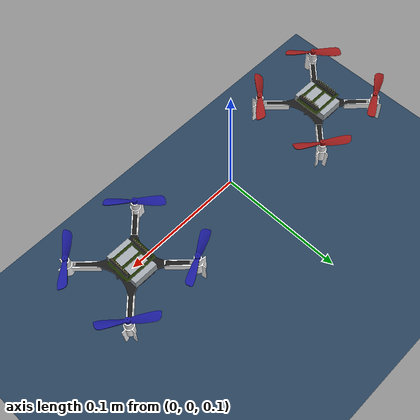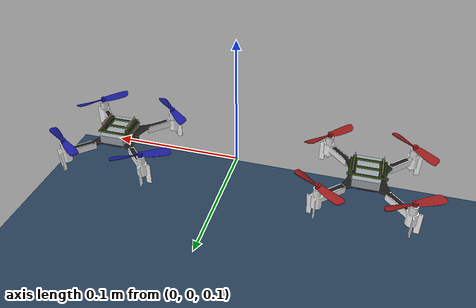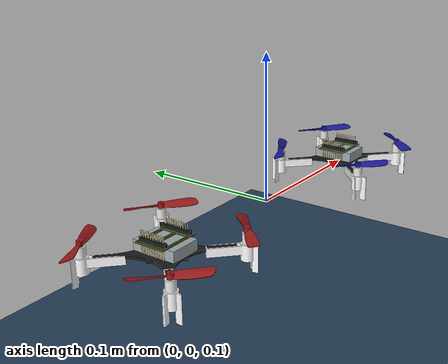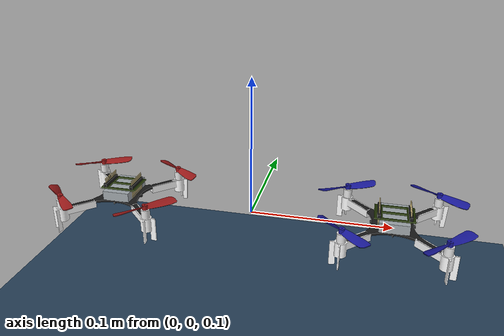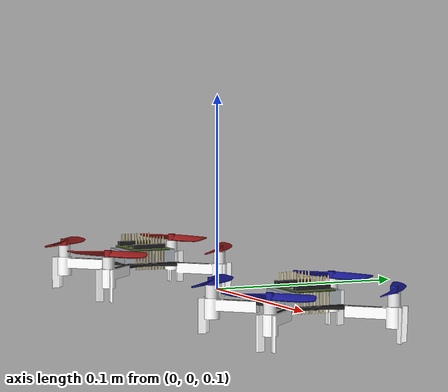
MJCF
<mujoco model="CF2 scene">
  <option integrator="RK4" density="1.225" viscosity="1.8e-5"/>

  <include file="cf2_multi_1.xml"/>
  <include file="cf2_multi_2.xml"/>

  <!-- Two drones, 14 / 8 for qpos / control -->
  <keyframe>
    <key name="hover" qpos="0 0 0.1 1 0 0 0 0 0 0.1 1 0 0 0" ctrl="0.26487 0 0 0 0.26487 0 0 0"/>
  </keyframe>

  <statistic center="0 0 0.1" extent="0.2" meansize=".05"/>

  <visual>
    <headlight diffuse="0.6 0.6 0.6" ambient="0.3 0.3 0.3" specular="0 0 0"/>
    <rgba haze="0.15 0.25 0.35 1"/>
    <global azimuth="-20" elevation="-20" ellipsoidinertia="true"/>
  </visual>

  <asset>
    <texture type="skybox" builtin="gradient" rgb1="0.3 0.5 0.7" rgb2="0 0 0" width="512" height="3072"/>
    <texture type="2d" name="groundplane" builtin="checker" mark="edge" rgb1="0.2 0.3 0.4" rgb2="0.1 0.2 0.3"
      markrgb="0.8 0.8 0.8" width="300" height="300"/>
    <material name="groundplane" texture="groundplane" texuniform="true" texrepeat="5 5" reflectance="0.2"/>
  </asset>

  <worldbody>
    <camera name="track" pos="-1 0 .5" xyaxes="0 -1 0 1 0 2" mode="trackcom"/>
    <light pos="0 0 1.5" dir="0 0 -1" directional="true"/>
    <geom name="floor" size="0 0 0.05" type="plane" material="groundplane"/>
  </worldbody>
</mujoco>

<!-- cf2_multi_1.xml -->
<mujoco model="cf2">
  <compiler inertiafromgeom="false" meshdir="assets" autolimits="true"/>

  <default>
    <default class="cf2">
      <default class="visual">
        <geom group="2" type="mesh" contype="0" conaffinity="0"/>
      </default>
      <default class="collision">
        <geom group="3" type="mesh"/>
      </default>
      <site group="5"/>
    </default>
  </default>

  <asset>
    <material name="polished_plastic" rgba="0.631 0.659 0.678 1"/>
    <material name="polished_gold" rgba="0.969 0.878 0.6 1"/>
    <material name="medium_gloss_plastic" rgba="0.109 0.184 0.0 1"/>
    <material name="propeller_plastic" rgba="0.792 0.820 0.933 1"/>
    <material name="white" rgba="1 1 1 1"/>
    <material name="body_frame_plastic" rgba="0.102 0.102 0.102 1"/>
    <material name="burnished_chrome" rgba="0.898 0.898 0.898 1"/>

    <mesh file="cf2_0.obj"/>
    <mesh file="cf2_1.obj"/>
    <mesh file="cf2_2.obj"/>
    <mesh file="cf2_3.obj"/>
    <mesh file="cf2_4.obj"/>
    <mesh file="cf2_5.obj"/>
    <mesh file="cf2_6.obj"/>
    <mesh file="cf2_collision_0.obj"/>
    <mesh file="cf2_collision_1.obj"/>
    <mesh file="cf2_collision_2.obj"/>
    <mesh file="cf2_collision_3.obj"/>
    <mesh file="cf2_collision_4.obj"/>
    <mesh file="cf2_collision_5.obj"/>
    <mesh file="cf2_collision_6.obj"/>
    <mesh file="cf2_collision_7.obj"/>
    <mesh file="cf2_collision_8.obj"/>
    <mesh file="cf2_collision_9.obj"/>
    <mesh file="cf2_collision_10.obj"/>
    <mesh file="cf2_collision_11.obj"/>
    <mesh file="cf2_collision_12.obj"/>
    <mesh file="cf2_collision_13.obj"/>
    <mesh file="cf2_collision_14.obj"/>
    <mesh file="cf2_collision_15.obj"/>
    <mesh file="cf2_collision_16.obj"/>
    <mesh file="cf2_collision_17.obj"/>
    <mesh file="cf2_collision_18.obj"/>
    <mesh file="cf2_collision_19.obj"/>
    <mesh file="cf2_collision_20.obj"/>
    <mesh file="cf2_collision_21.obj"/>
    <mesh file="cf2_collision_22.obj"/>
    <mesh file="cf2_collision_23.obj"/>
    <mesh file="cf2_collision_24.obj"/>
    <mesh file="cf2_collision_25.obj"/>
    <mesh file="cf2_collision_26.obj"/>
    <mesh file="cf2_collision_27.obj"/>
    <mesh file="cf2_collision_28.obj"/>
    <mesh file="cf2_collision_29.obj"/>
    <mesh file="cf2_collision_30.obj"/>
    <mesh file="cf2_collision_31.obj"/>
  </asset>

  <worldbody>
    <!-- Slide x offset to allow space for other drone -->
    <body name="cf2" pos="-0.1 0 0.1" childclass="cf2">
      <freejoint/>
      <inertial pos="0 0 0" mass="0.027" diaginertia="2.3951e-5 2.3951e-5 3.2347e-5"/>
      <!-- Drone 1: red propellors -->
      <geom mesh="cf2_0_drone_2" rgba="0.6 0.1 0.1 1" class="visual"/>
      <geom mesh="cf2_1" material="medium_gloss_plastic" class="visual"/>
      <geom mesh="cf2_2" material="polished_gold" class="visual"/>
      <geom mesh="cf2_3" material="polished_plastic" class="visual"/>
      <geom mesh="cf2_4" material="burnished_chrome" class="visual"/>
      <geom mesh="cf2_5" material="body_frame_plastic" class="visual"/>
      <geom mesh="cf2_6" material="white" class="visual"/>
      <geom mesh="cf2_collision_0" class="collision"/>
      <geom mesh="cf2_collision_1" class="collision"/>
      <geom mesh="cf2_collision_2" class="collision"/>
      <geom mesh="cf2_collision_3" class="collision"/>
      <geom mesh="cf2_collision_4" class="collision"/>
      <geom mesh="cf2_collision_5" class="collision"/>
      <geom mesh="cf2_collision_6" class="collision"/>
      <geom mesh="cf2_collision_7" class="collision"/>
      <geom mesh="cf2_collision_8" class="collision"/>
      <geom mesh="cf2_collision_9" class="collision"/>
      <geom mesh="cf2_collision_10" class="collision"/>
      <geom mesh="cf2_collision_11" class="collision"/>
      <geom mesh="cf2_collision_12" class="collision"/>
      <geom mesh="cf2_collision_13" class="collision"/>
      <geom mesh="cf2_collision_14" class="collision"/>
      <geom mesh="cf2_collision_15" class="collision"/>
      <geom mesh="cf2_collision_16" class="collision"/>
      <geom mesh="cf2_collision_17" class="collision"/>
      <geom mesh="cf2_collision_18" class="collision"/>
      <geom mesh="cf2_collision_19" class="collision"/>
      <geom mesh="cf2_collision_20" class="collision"/>
      <geom mesh="cf2_collision_21" class="collision"/>
      <geom mesh="cf2_collision_22" class="collision"/>
      <geom mesh="cf2_collision_23" class="collision"/>
      <geom mesh="cf2_collision_24" class="collision"/>
      <geom mesh="cf2_collision_25" class="collision"/>
      <geom mesh="cf2_collision_26" class="collision"/>
      <geom mesh="cf2_collision_27" class="collision"/>
      <geom mesh="cf2_collision_28" class="collision"/>
      <geom mesh="cf2_collision_29" class="collision"/>
      <geom mesh="cf2_collision_30" class="collision"/>
      <geom mesh="cf2_collision_31" class="collision"/>
      <site name="imu"/>
      <site name="actuation"/>
    </body>
  </worldbody>

  <actuator>
    <motor class="cf2" ctrlrange="0 0.35" gear="0 0 1 0 0 0" site="actuation" name="body_thrust"/>
    <motor class="cf2" ctrlrange="-1 1" gear="0 0 0 -0.00001 0 0" site="actuation" name="x_moment"/>
    <motor class="cf2" ctrlrange="-1 1" gear="0 0 0 0 -0.00001 0" site="actuation" name="y_moment"/>
    <motor class="cf2" ctrlrange="-1 1" gear="0 0 0 0 0 -0.00001" site="actuation" name="z_moment"/>
  </actuator>

  <sensor>
    <gyro name="body_gyro" site="imu"/>
    <accelerometer name="body_linacc" site="imu"/>
    <framequat name="body_quat" objtype="site" objname="imu"/>
  </sensor>
</mujoco>

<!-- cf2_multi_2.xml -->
<mujoco model="cf2">
  <compiler inertiafromgeom="false" meshdir="assets" autolimits="true"/>

  <default>
    <default class="cf2_drone_2">
      <default class="visual_drone_2">
        <geom group="2" type="mesh" contype="0" conaffinity="0"/>
      </default>
      <default class="collision_drone_2">
        <geom group="3" type="mesh"/>
      </default>
      <site group="5"/>
    </default>
  </default>

  <asset>
    <material name="polished_plastic_drone_2" rgba="0.631 0.659 0.678 1"/>
    <material name="polished_gold_drone_2" rgba="0.969 0.878 0.6 1"/>
    <material name="medium_gloss_plastic_drone_2" rgba="0.109 0.184 0.0 1"/>
    <material name="propeller_plastic_drone_2" rgba="0.792 0.820 0.933 1"/>
    <material name="white_drone_2" rgba="1 1 1 1"/>
    <material name="body_frame_plastic_drone_2" rgba="0.102 0.102 0.102 1"/>
    <material name="burnished_chrome_drone_2" rgba="0.898 0.898 0.898 1"/>

    <mesh name="cf2_0_drone_2" file="cf2_0.obj"/>
    <mesh name="cf2_1_drone_2" file="cf2_1.obj"/>
    <mesh name="cf2_2_drone_2" file="cf2_2.obj"/>
    <mesh name="cf2_3_drone_2" file="cf2_3.obj"/>
    <mesh name="cf2_4_drone_2" file="cf2_4.obj"/>
    <mesh name="cf2_5_drone_2" file="cf2_5.obj"/>
    <mesh name="cf2_6_drone_2" file="cf2_6.obj"/>
    <mesh name="cf2_collision_0_drone_2" file="cf2_collision_0.obj"/>
    <mesh name="cf2_collision_1_drone_2" file="cf2_collision_1.obj"/>
    <mesh name="cf2_collision_2_drone_2" file="cf2_collision_2.obj"/>
    <mesh name="cf2_collision_3_drone_2" file="cf2_collision_3.obj"/>
    <mesh name="cf2_collision_4_drone_2" file="cf2_collision_4.obj"/>
    <mesh name="cf2_collision_5_drone_2" file="cf2_collision_5.obj"/>
    <mesh name="cf2_collision_6_drone_2" file="cf2_collision_6.obj"/>
    <mesh name="cf2_collision_7_drone_2" file="cf2_collision_7.obj"/>
    <mesh name="cf2_collision_8_drone_2" file="cf2_collision_8.obj"/>
    <mesh name="cf2_collision_9_drone_2" file="cf2_collision_9.obj"/>
    <mesh name="cf2_collision_10_drone_2" file="cf2_collision_10.obj"/>
    <mesh name="cf2_collision_11_drone_2" file="cf2_collision_11.obj"/>
    <mesh name="cf2_collision_12_drone_2" file="cf2_collision_12.obj"/>
    <mesh name="cf2_collision_13_drone_2" file="cf2_collision_13.obj"/>
    <mesh name="cf2_collision_14_drone_2" file="cf2_collision_14.obj"/>
    <mesh name="cf2_collision_15_drone_2" file="cf2_collision_15.obj"/>
    <mesh name="cf2_collision_16_drone_2" file="cf2_collision_16.obj"/>
    <mesh name="cf2_collision_17_drone_2" file="cf2_collision_17.obj"/>
    <mesh name="cf2_collision_18_drone_2" file="cf2_collision_18.obj"/>
    <mesh name="cf2_collision_19_drone_2" file="cf2_collision_19.obj"/>
    <mesh name="cf2_collision_20_drone_2" file="cf2_collision_20.obj"/>
    <mesh name="cf2_collision_21_drone_2" file="cf2_collision_21.obj"/>
    <mesh name="cf2_collision_22_drone_2" file="cf2_collision_22.obj"/>
    <mesh name="cf2_collision_23_drone_2" file="cf2_collision_23.obj"/>
    <mesh name="cf2_collision_24_drone_2" file="cf2_collision_24.obj"/>
    <mesh name="cf2_collision_25_drone_2" file="cf2_collision_25.obj"/>
    <mesh name="cf2_collision_26_drone_2" file="cf2_collision_26.obj"/>
    <mesh name="cf2_collision_27_drone_2" file="cf2_collision_27.obj"/>
    <mesh name="cf2_collision_28_drone_2" file="cf2_collision_28.obj"/>
    <mesh name="cf2_collision_29_drone_2" file="cf2_collision_29.obj"/>
    <mesh name="cf2_collision_30_drone_2" file="cf2_collision_30.obj"/>
    <mesh name="cf2_collision_31_drone_2" file="cf2_collision_31.obj"/>
  </asset>

  <worldbody>
    <!-- Slide x offset to allow space for other drone -->
    <body name="cf2_drone_2" pos="0.1 0 0.1" childclass="cf2_drone_2">
      <freejoint/>
      <inertial pos="0 0 0" mass="0.027" diaginertia="2.3951e-5 2.3951e-5 3.2347e-5"/>
      <!-- Drone 2: blue propellors -->
      <geom mesh="cf2_0_drone_2" rgba="0.1 0.1 0.6 1" class="visual"/>
      <geom mesh="cf2_1_drone_2" material="medium_gloss_plastic" class="visual"/>
      <geom mesh="cf2_2_drone_2" material="polished_gold" class="visual"/>
      <geom mesh="cf2_3_drone_2" material="polished_plastic" class="visual"/>
      <geom mesh="cf2_4_drone_2" material="burnished_chrome" class="visual"/>
      <geom mesh="cf2_5_drone_2" material="body_frame_plastic" class="visual"/>
      <geom mesh="cf2_6_drone_2" material="white" class="visual"/>
      <geom mesh="cf2_collision_0_drone_2" class="collision"/>
      <geom mesh="cf2_collision_1_drone_2" class="collision"/>
      <geom mesh="cf2_collision_2_drone_2" class="collision"/>
      <geom mesh="cf2_collision_3_drone_2" class="collision"/>
      <geom mesh="cf2_collision_4_drone_2" class="collision"/>
      <geom mesh="cf2_collision_5_drone_2" class="collision"/>
      <geom mesh="cf2_collision_6_drone_2" class="collision"/>
      <geom mesh="cf2_collision_7_drone_2" class="collision"/>
      <geom mesh="cf2_collision_8_drone_2" class="collision"/>
      <geom mesh="cf2_collision_9_drone_2" class="collision"/>
      <geom mesh="cf2_collision_10_drone_2" class="collision"/>
      <geom mesh="cf2_collision_11_drone_2" class="collision"/>
      <geom mesh="cf2_collision_12_drone_2" class="collision"/>
      <geom mesh="cf2_collision_13_drone_2" class="collision"/>
      <geom mesh="cf2_collision_14_drone_2" class="collision"/>
      <geom mesh="cf2_collision_15_drone_2" class="collision"/>
      <geom mesh="cf2_collision_16_drone_2" class="collision"/>
      <geom mesh="cf2_collision_17_drone_2" class="collision"/>
      <geom mesh="cf2_collision_18_drone_2" class="collision"/>
      <geom mesh="cf2_collision_19_drone_2" class="collision"/>
      <geom mesh="cf2_collision_20_drone_2" class="collision"/>
      <geom mesh="cf2_collision_21_drone_2" class="collision"/>
      <geom mesh="cf2_collision_22_drone_2" class="collision"/>
      <geom mesh="cf2_collision_23_drone_2" class="collision"/>
      <geom mesh="cf2_collision_24_drone_2" class="collision"/>
      <geom mesh="cf2_collision_25_drone_2" class="collision"/>
      <geom mesh="cf2_collision_26_drone_2" class="collision"/>
      <geom mesh="cf2_collision_27_drone_2" class="collision"/>
      <geom mesh="cf2_collision_28_drone_2" class="collision"/>
      <geom mesh="cf2_collision_29_drone_2" class="collision"/>
      <geom mesh="cf2_collision_30_drone_2" class="collision"/>
      <geom mesh="cf2_collision_31_drone_2" class="collision"/>
      <site name="imu_drone_2"/>
      <site name="actuation_drone_2"/>
    </body>
  </worldbody>

  <actuator>
    <motor class="cf2_drone_2" ctrlrange="0 0.35" gear="0 0 1 0 0 0" site="actuation_drone_2" name="body_thrust_drone_2"/>
    <motor class="cf2_drone_2" ctrlrange="-1 1" gear="0 0 0 -0.00001 0 0" site="actuation_drone_2" name="x_moment_drone_2"/>
    <motor class="cf2_drone_2" ctrlrange="-1 1" gear="0 0 0 0 -0.00001 0" site="actuation_drone_2" name="y_moment_drone_2"/>
    <motor class="cf2_drone_2" ctrlrange="-1 1" gear="0 0 0 0 0 -0.00001" site="actuation_drone_2" name="z_moment_drone_2"/>
  </actuator>

  <sensor>
    <gyro name="body_gyro_drone_2" site="imu_drone_2"/>
    <accelerometer name="body_linacc_drone_2" site="imu"/>
    <framequat name="body_quat_drone_2" objtype="site" objname="imu"/>
  </sensor>
</mujoco>
